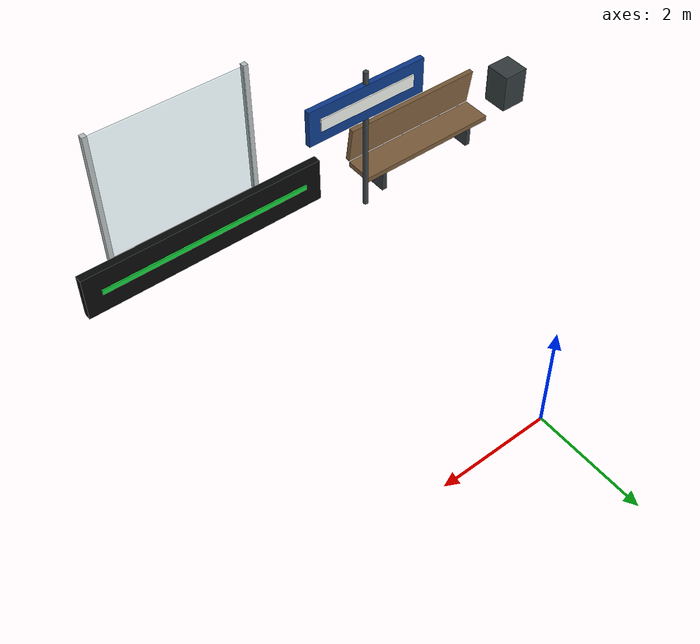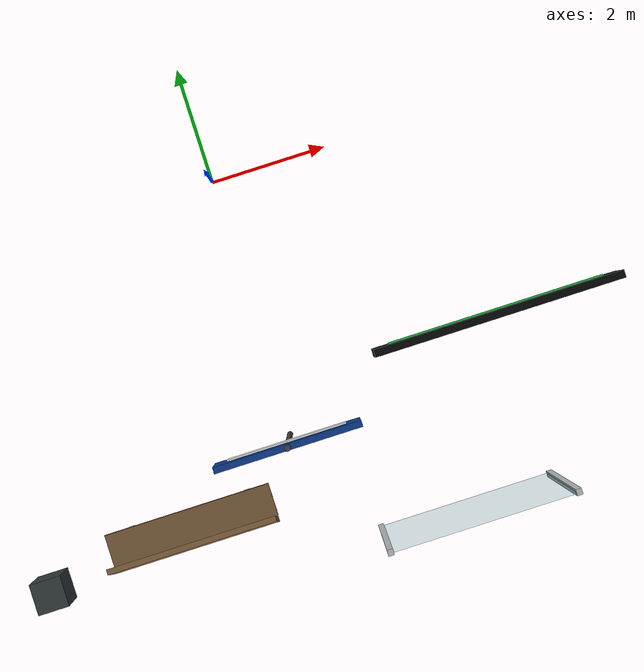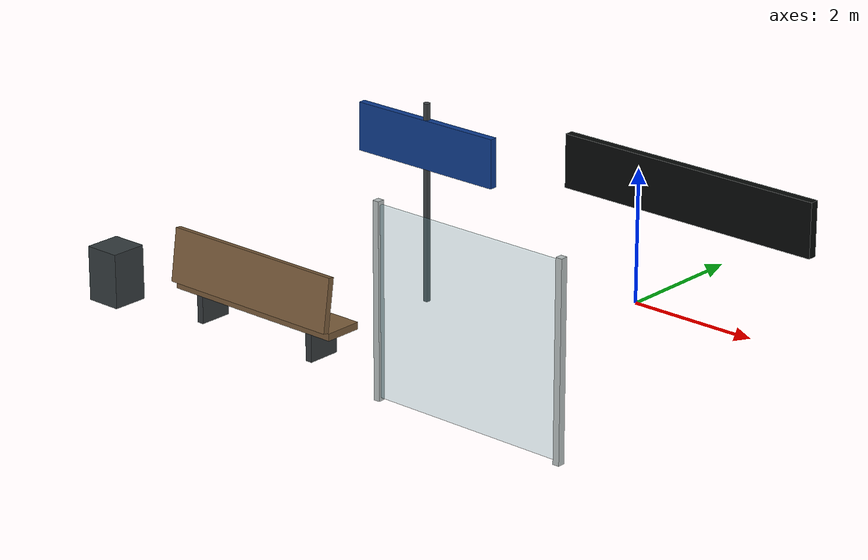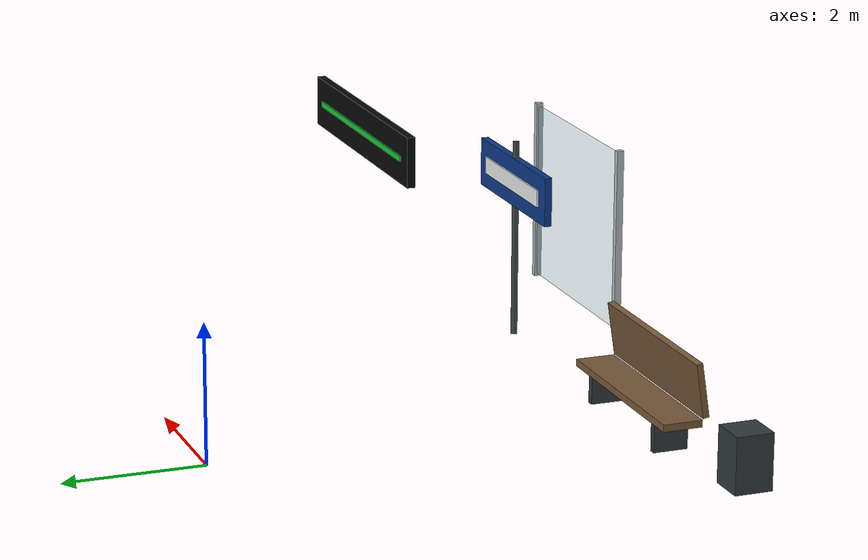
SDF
<?xml version="1.0"?>
<sdf version="1.9">
  <model name="station_furniture">
    <static>true</static>
    <plugin filename="gz-sim-label-system" name="gz::sim::systems::Label"><label>21</label></plugin>
    <link name="furniture">
      <visual name="bench_seat"><pose>-2 -5.35 1.04 0 0 0</pose><geometry><box><size>2.8 0.55 0.10</size></box></geometry><material><diffuse>0.48 0.36 0.23 1</diffuse><pbr><metal><roughness>0.65</roughness><metalness>0.05</metalness></metal></pbr></material></visual>
      <visual name="bench_back"><pose>-2 -5.62 1.48 -0.15 0 0</pose><geometry><box><size>2.8 0.09 0.75</size></box></geometry><material><diffuse>0.48 0.36 0.23 1</diffuse></material></visual>
      <visual name="bench_leg_l"><pose>-3 -5.35 0.80 0 0 0</pose><geometry><box><size>0.10 0.48 0.44</size></box></geometry><material><diffuse>0.20 0.22 0.23 1</diffuse></material></visual>
      <visual name="bench_leg_r"><pose>-1 -5.35 0.80 0 0 0</pose><geometry><box><size>0.10 0.48 0.44</size></box></geometry><material><diffuse>0.20 0.22 0.23 1</diffuse></material></visual>
      <visual name="glass_a"><pose>2.4 -6.35 2.18 0 0 0</pose><geometry><box><size>2.8 0.045 2.55</size></box></geometry><material><ambient>0.30 0.48 0.52 0.34</ambient><diffuse>0.45 0.68 0.72 0.30</diffuse><specular>0.8 0.8 0.8 1</specular></material><transparency>0.68</transparency></visual>
      <visual name="glass_post_l"><pose>0.95 -6.35 2.18 0 0 0</pose><geometry><box><size>0.09 0.10 2.65</size></box></geometry><material><diffuse>0.72 0.75 0.75 1</diffuse></material></visual>
      <visual name="glass_post_r"><pose>3.85 -6.35 2.18 0 0 0</pose><geometry><box><size>0.09 0.10 2.65</size></box></geometry><material><diffuse>0.72 0.75 0.75 1</diffuse></material></visual>
      <visual name="sign_post"><pose>0 -4.40 2.70 0 0 0</pose><geometry><cylinder><radius>0.045</radius><length>2.7</length></cylinder></geometry><material><diffuse>0.25 0.27 0.28 1</diffuse></material></visual>
      <visual name="station_sign"><pose>0 -4.40 3.50 0 0 0</pose><geometry><box><size>2.25 0.10 0.66</size></box></geometry><material><diffuse>0.05 0.23 0.55 1</diffuse></material></visual>
      <visual name="sign_white_band"><pose>0 -4.34 3.50 0 0 0</pose><geometry><box><size>1.82 0.025 0.23</size></box></geometry><material><diffuse>0.94 0.95 0.93 1</diffuse></material></visual>
      <visual name="led_board"><pose>3.5 -3.50 3.43 0 0 0</pose><geometry><box><size>3.8 0.12 0.72</size></box></geometry><material><diffuse>0.025 0.032 0.030 1</diffuse></material></visual>
      <visual name="led_green"><pose>3.5 -3.43 3.43 0 0 0</pose><geometry><box><size>3.30 0.02 0.08</size></box></geometry><material><emissive>0.08 0.82 0.23 1</emissive><diffuse>0.08 0.82 0.23 1</diffuse></material></visual>
      <visual name="bin"><pose>-4.5 -5.7 0.95 0 0 0</pose><geometry><box><size>0.52 0.52 0.78</size></box></geometry><material><diffuse>0.20 0.23 0.24 1</diffuse></material></visual>
    </link>
  </model>
</sdf>
